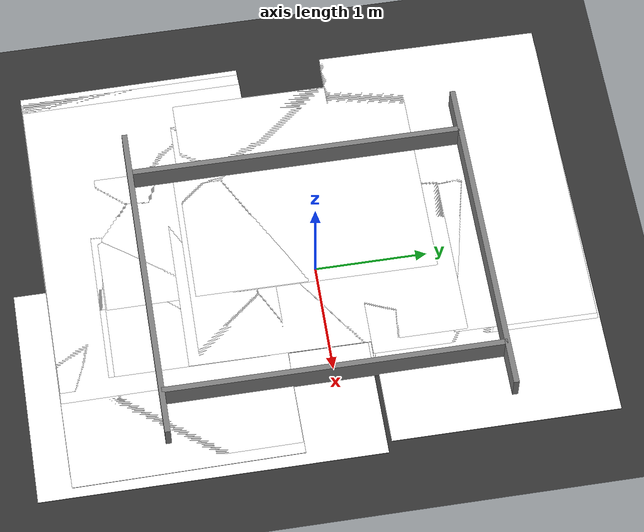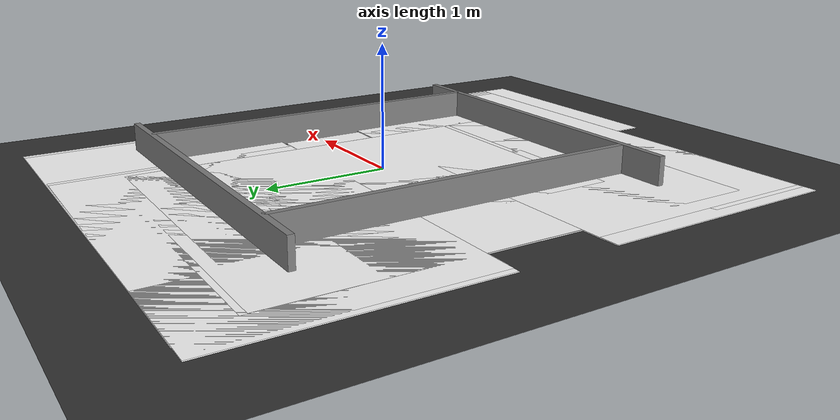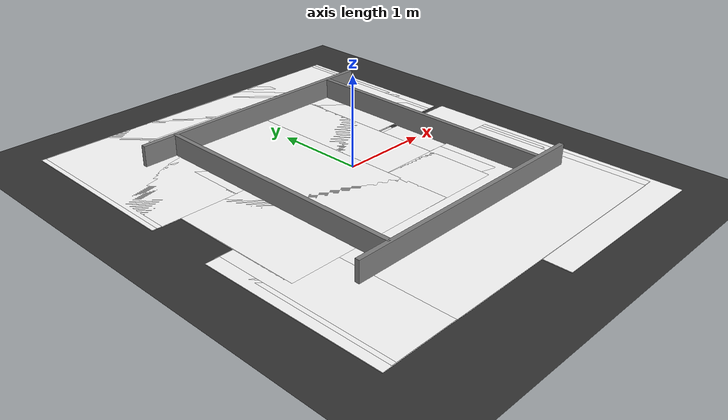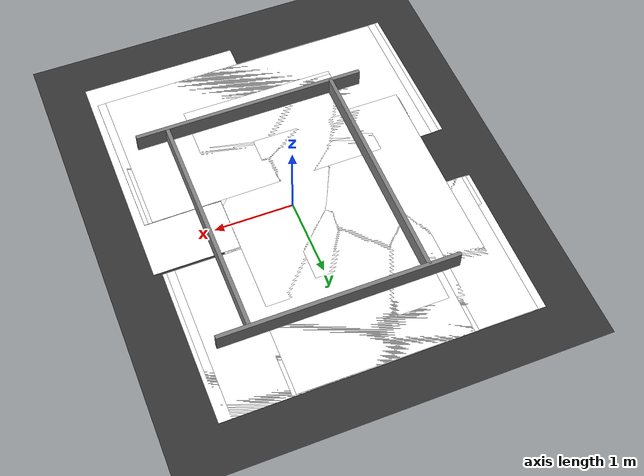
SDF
<sdf version='1.9'>
  <world name='eurobot_2026_arena'>
    <gravity>0 0 -9.81</gravity>
    <physics type='ode'>
      <max_step_size>0.001</max_step_size>
      <real_time_factor>1</real_time_factor>
      <real_time_update_rate>1000</real_time_update_rate>
    </physics>

    <plugin
    filename="libignition-gazebo-physics-system.so"
    name="ignition::gazebo::systems::Physics">
    </plugin>
    <plugin
    filename="libignition-gazebo-user-commands-system.so"
    name="ignition::gazebo::systems::UserCommands">
    </plugin>
    <plugin
    filename="libignition-gazebo-scene-broadcaster-system.so"
    name="ignition::gazebo::systems::SceneBroadcaster">
    </plugin>

    <magnetic_field>6e-06 2.3e-05 -4.2e-05</magnetic_field>
    <atmosphere type='adiabatic'/>

    <scene>
      <ambient>0.4 0.4 0.4 1</ambient>
      <background>0.7 0.7 0.7 1</background>
      <shadows>true</shadows>
    </scene>

    <model name='ground_plane'>
      <static>true</static>
      <link name='link'>
        <collision name='collision'>
          <geometry>
            <plane>
              <normal>0 0 1</normal>
              <size>20 20</size>
            </plane>
          </geometry>
          <surface>
            <friction><ode/></friction>
            <bounce/>
            <contact/>
          </surface>
        </collision>
        <visual name='visual'>
          <geometry>
            <plane>
              <normal>0 0 1</normal>
              <size>20 20</size>
            </plane>
          </geometry>
          <material>
            <ambient>0.8 0.8 0.8 1</ambient>
            <diffuse>0.2 0.2 0.2 1</diffuse>
            <specular>0.8 0.8 0.8 1</specular>
          </material>
        </visual>
        <pose>0 0 0 0 0 0</pose>
        <inertial>
          <pose>0 0 0 0 0 0</pose>
          <mass>1</mass>
          <inertia>
            <ixx>1</ixx><ixy>0</ixy><ixz>0</ixz>
            <iyy>1</iyy><iyz>0</iyz><izz>1</izz>
          </inertia>
        </inertial>
        <enable_wind>false</enable_wind>
      </link>
      <pose>0 0 0 0 0 0</pose>
      <self_collide>false</self_collide>
    </model>

    <model name="arena_walls">
  <static>true</static>

  <!-- North wall -->
  <link name="north_wall">
    <pose>0 1.5 0.125 0 0 0</pose>
    <collision name="collision">
      <geometry>
        <box>
          <size>3.0 0.05 0.25</size>
        </box>
      </geometry>
    </collision>
    <visual name="visual">
      <geometry>
        <box>
          <size>3.0 0.05 0.25</size>
        </box>
      </geometry>
      <material>
        <ambient>0.5 0.5 0.5 1</ambient>
        <diffuse>0.5 0.5 0.5 1</diffuse>
      </material>
    </visual>
  </link>

  <!-- South wall -->
  <link name="south_wall">
    <pose>0 -1.5 0.125 0 0 0</pose>
    <collision name="collision">
      <geometry>
        <box>
          <size>3.0 0.05 0.25</size>
        </box>
      </geometry>
    </collision>
    <visual name="visual">
      <geometry>
        <box>
          <size>3.0 0.05 0.25</size>
        </box>
      </geometry>
      <material>
        <ambient>0.5 0.5 0.5 1</ambient>
        <diffuse>0.5 0.5 0.5 1</diffuse>
      </material>
    </visual>
  </link>

  <!-- East wall -->
  <link name="east_wall">
    <pose>1.1 0 0.125 0 0 0</pose>
    <collision name="collision">
      <geometry>
        <box>
          <size>0.05 3.0 0.25</size>
        </box>
      </geometry>
    </collision>
    <visual name="visual">
      <geometry>
        <box>
          <size>0.05 3.0 0.25</size>
        </box>
      </geometry>
      <material>
        <ambient>0.5 0.5 0.5 1</ambient>
        <diffuse>0.5 0.5 0.5 1</diffuse>
      </material>
    </visual>
  </link>

  <!-- West wall -->
  <link name="west_wall">
    <pose>-1.1 0 0.125 0 0 0</pose>
    <collision name="collision">
      <geometry>
        <box>
          <size>0.05 3.0 0.25</size>
        </box>
      </geometry>
    </collision>
    <visual name="visual">
      <geometry>
        <box>
          <size>0.05 3.0 0.25</size>
        </box>
      </geometry>
      <material>
        <ambient>0.5 0.5 0.5 1</ambient>
        <diffuse>0.5 0.5 0.5 1</diffuse>
      </material>
    </visual>
  </link>

</model>

    <!-- Include models with absolute paths -->
    <include>
      <uri>file:///root/eurobot_ws/src/mam_eurobot_2026/models/mat/model.sdf</uri>
      <name>floor_mat</name>
      <pose>0 -0.00433 0 0 0 0</pose>
    </include>

    <include>
      <uri>file:///root/eurobot_ws/src/mam_eurobot_2026/models/simple_robot/model.sdf</uri>
      <name>simple_robot</name>
      <pose>0.868771 -1.16123 0.0035 0 0 3.1415</pose>
    </include>

    <!-- Blue Crates -->
    <include>
      <uri>file:///root/eurobot_ws/src/mam_eurobot_2026/models/crate/model.sdf</uri>
      <name>crate</name>
      <pose>0.123039 -1.3753 0.018499 0 0 -1.5642</pose>
    </include>

    <include>
      <uri>file:///root/eurobot_ws/src/mam_eurobot_2026/models/crate/model.sdf</uri>
      <name>crate_1</name>
      <pose>0.173038 -1.37506 0.0185 0 0 -1.5642</pose>
    </include>

    <include>
      <uri>file:///root/eurobot_ws/src/mam_eurobot_2026/models/crate/model.sdf</uri>
      <name>crate_2</name>
      <pose>-0.52415 -1.37532 0.0185 -0 -0 -1.5642</pose>
    </include>

    <include>
      <uri>file:///root/eurobot_ws/src/mam_eurobot_2026/models/crate/model.sdf</uri>
      <name>crate_3</name>
      <pose>-0.574153 -1.375 0.018499 0 0 -1.5642</pose>
    </include>

    <include>
      <uri>file:///root/eurobot_ws/src/mam_eurobot_2026/models/crate/model.sdf</uri>
      <name>crate_4</name>
      <pose>-0.870598 -0.472588 0.018499 -0 -0 3.13271</pose>
    </include>

    <include>
      <uri>file:///root/eurobot_ws/src/mam_eurobot_2026/models/crate/model.sdf</uri>
      <name>crate_5</name>
      <pose>-0.870996 -0.422215 0.0185 -0 -0 3.13766</pose>
    </include>

    <include>
      <uri>file:///root/eurobot_ws/src/mam_eurobot_2026/models/crate/model.sdf</uri>
      <name>crate_6</name>
      <pose>-0.873079 0.321639 0.018499 0 0 3.13271</pose>
    </include>

    <include>
      <uri>file:///root/eurobot_ws/src/mam_eurobot_2026/models/crate/model.sdf</uri>
      <name>crate_7</name>
      <pose>-0.875191 0.424269 0.0185 -0 -0 3.13678</pose>
    </include>

    <include>
      <uri>file:///root/eurobot_ws/src/mam_eurobot_2026/models/crate/model.sdf</uri>
      <name>crate_8</name>
      <pose>-0.677266 1.37341 0.0185 -0 0 1.56396</pose>
    </include>

    <include>
      <uri>file:///root/eurobot_ws/src/mam_eurobot_2026/models/crate/model.sdf</uri>
      <name>crate_9</name>
      <pose>-0.525644 1.37394 0.018499 0 -0 1.56191</pose>
    </include>

    <include>
      <uri>file:///root/eurobot_ws/src/mam_eurobot_2026/models/crate/model.sdf</uri>
      <name>crate_10</name>
      <pose>0.125086 1.37882 0.0185 -0 -0 1.56979</pose>
    </include>

    <include>
      <uri>file:///root/eurobot_ws/src/mam_eurobot_2026/models/crate/model.sdf</uri>
      <name>crate_11</name>
      <pose>0.225085 1.37758 0.0185 -0 -0 1.56979</pose>
    </include>

    <include>
      <uri>file:///root/eurobot_ws/src/mam_eurobot_2026/models/crate/model.sdf</uri>
      <name>crate_12</name>
      <pose>-0.198373 0.372357 0.0185 0 -0 3.13698</pose>
    </include>

    <include>
      <uri>file:///root/eurobot_ws/src/mam_eurobot_2026/models/crate/model.sdf</uri>
      <name>crate_13</name>
      <pose>-0.201906 0.272373 0.0185 -0 -0 3.13697</pose>
    </include>

    <include>
      <uri>file:///root/eurobot_ws/src/mam_eurobot_2026/models/crate/model.sdf</uri>
      <name>crate_14</name>
      <pose>-0.201321 -0.327593 0.0185 0 0 3.13843</pose>
    </include>

    <include>
      <uri>file:///root/eurobot_ws/src/mam_eurobot_2026/models/crate/model.sdf</uri>
      <name>crate_15</name>
      <pose>-0.201382 -0.377593 0.0185 -0 -0 3.13843</pose>
    </include>

    <!-- Yellow Crates -->
    <include>
      <uri>file:///root/eurobot_ws/src/mam_eurobot_2026/models/crate_yellow/model.sdf</uri>
      <name>crate_yellow_1</name>
      <pose>0.22501 -1.37446 0.018499 0 0 1.57972</pose>
    </include>

    <include>
      <uri>file:///root/eurobot_ws/src/mam_eurobot_2026/models/crate_yellow/model.sdf</uri>
      <name>crate_yellow_2</name>
      <pose>0.275049 -1.37451 0.018499 -0 -0 1.57972</pose>
    </include>

    <include>
      <uri>file:///root/eurobot_ws/src/mam_eurobot_2026/models/crate_yellow/model.sdf</uri>
      <name>crate_yellow_3</name>
      <pose>0.175086 1.37855 0.0185 -0 0 1.56979</pose>
    </include>

    <include>
      <uri>file:///root/eurobot_ws/src/mam_eurobot_2026/models/crate_yellow/model.sdf</uri>
      <name>crate_yellow_4</name>
      <pose>0.275086 1.37884 0.0185 0 -0 1.56979</pose>
    </include>

    <include>
      <uri>file:///root/eurobot_ws/src/mam_eurobot_2026/models/crate_yellow/model.sdf</uri>
      <name>crate_yellow_5</name>
      <pose>-0.626897 -1.37615 0.018499 -0 0 1.57972</pose>
    </include>

    <include>
      <uri>file:///root/eurobot_ws/src/mam_eurobot_2026/models/crate_yellow/model.sdf</uri>
      <name>crate_yellow_6</name>
      <pose>-0.677176 -1.3772 0.018499 -0 0 1.57972</pose>
    </include>

    <include>
      <uri>file:///root/eurobot_ws/src/mam_eurobot_2026/models/crate_yellow/model.sdf</uri>
      <name>crate_yellow_7</name>
      <pose>-0.871546 -0.371693 0.0185 -0 0 0.003064</pose>
    </include>

    <include>
      <uri>file:///root/eurobot_ws/src/mam_eurobot_2026/models/crate_yellow/model.sdf</uri>
      <name>crate_yellow_8</name>
      <pose>-0.869885 -0.321019 0.018499 0 -0 0.003176</pose>
    </include>

    <include>
      <uri>file:///root/eurobot_ws/src/mam_eurobot_2026/models/crate_yellow/model.sdf</uri>
      <name>crate_yellow_9</name>
      <pose>-0.875168 0.373791 0.0185 0 -0 0.001573</pose>
    </include>

    <include>
      <uri>file:///root/eurobot_ws/src/mam_eurobot_2026/models/crate_yellow/model.sdf</uri>
      <name>crate_yellow_10</name>
      <pose>-0.875208 0.474528 0.0185 -0 0 -0.001354</pose>
    </include>

    <include>
      <uri>file:///root/eurobot_ws/src/mam_eurobot_2026/models/crate_yellow/model.sdf</uri>
      <name>crate_yellow_11</name>
      <pose>-0.627211 1.37193 0.0185 0 -0 1.56481</pose>
    </include>

    <include>
      <uri>file:///root/eurobot_ws/src/mam_eurobot_2026/models/crate_yellow/model.sdf</uri>
      <name>crate_yellow_12</name>
      <pose>-0.577043 1.37114 0.0185 0 -0 1.5671</pose>
    </include>

    <include>
      <uri>file:///root/eurobot_ws/src/mam_eurobot_2026/models/crate_yellow/model.sdf</uri>
      <name>crate_yellow_13</name>
      <pose>-0.199325 0.424578 0.018499 -0 -0 -0.001354</pose>
    </include>

    <include>
      <uri>file:///root/eurobot_ws/src/mam_eurobot_2026/models/crate_yellow/model.sdf</uri>
      <name>crate_yellow_14</name>
      <pose>-0.201084 0.32237 0.0185 -0 -0 -0.004617</pose>
    </include>

    <include>
      <uri>file:///root/eurobot_ws/src/mam_eurobot_2026/models/crate_yellow/model.sdf</uri>
      <name>crate_yellow_15</name>
      <pose>-0.200865 -0.277595 0.0185 -0 0 -0.003162</pose>
    </include>

    <include>
      <uri>file:///root/eurobot_ws/src/mam_eurobot_2026/models/crate_yellow/model.sdf</uri>
      <name>crate_yellow_16</name>
      <pose>-0.201808 -0.427592 0.0185 0 0 -0.00316</pose>
    </include>

    <!-- Light -->
    <light name="sun" type="directional">
      <pose>0 0 0 0 0 0</pose>
      <cast_shadows>false</cast_shadows>
      <intensity>1</intensity>
      <direction>-0.5 0.5 -1</direction>
      <diffuse>1 1 1 1</diffuse>
      <specular>0.5 0.5 0.5 1</specular>
    </light>

  </world>
</sdf>

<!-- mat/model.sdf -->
<sdf version="1.9">
  <!-- Define a floor mat (3000mm x 2000mm x 70mm) -->
	<model name="floor_mat">
		<static>true</static>
		<link name="floor_link">
			<collision name="collision">
				<geometry>
					<box>
						<size>2 3 0.007</size>  <!-- 3000mm x 2000mm x 70mm -->
					</box>
				</geometry>
				<surface>
					<friction>
						<ode>
							<mu>0.9</mu>
							<mu2>0.9</mu2>
						</ode>
					</friction>
				</surface>
			</collision>
			<visual name="visual">
					<geometry>
							<box>
									<size>2 3 0.007</size> <!-- 3000mm x 2000mm x 70mm -->
							</box>
					</geometry>
					<material>
							<diffuse>1 1 1 1</diffuse>
							<pbr>
									<metal>
											<albedo_map>file:///root/eurobot_ws/src/mam_eurobot_2026/models/mat/mat_small.png</albedo_map>
											<metalness>0.0</metalness>
											<roughness>0.8</roughness>
									</metal>
							</pbr>
					</material>
			</visual>
		</link>
	</model>
</sdf>
